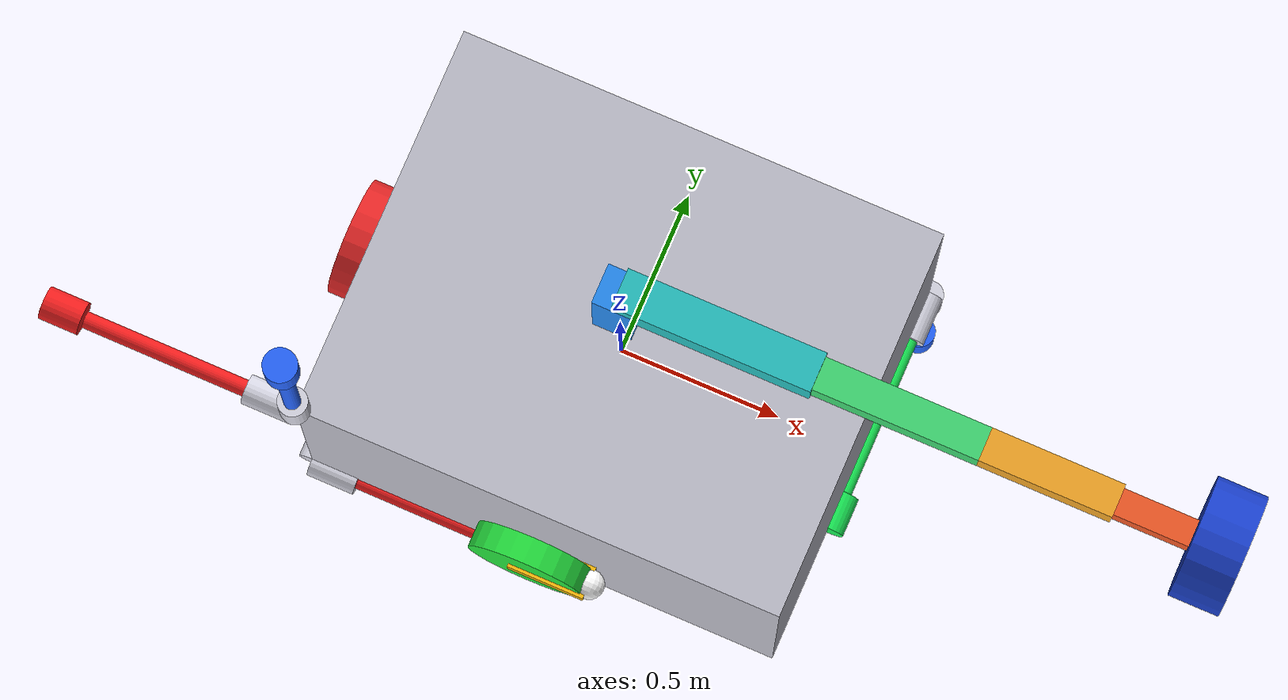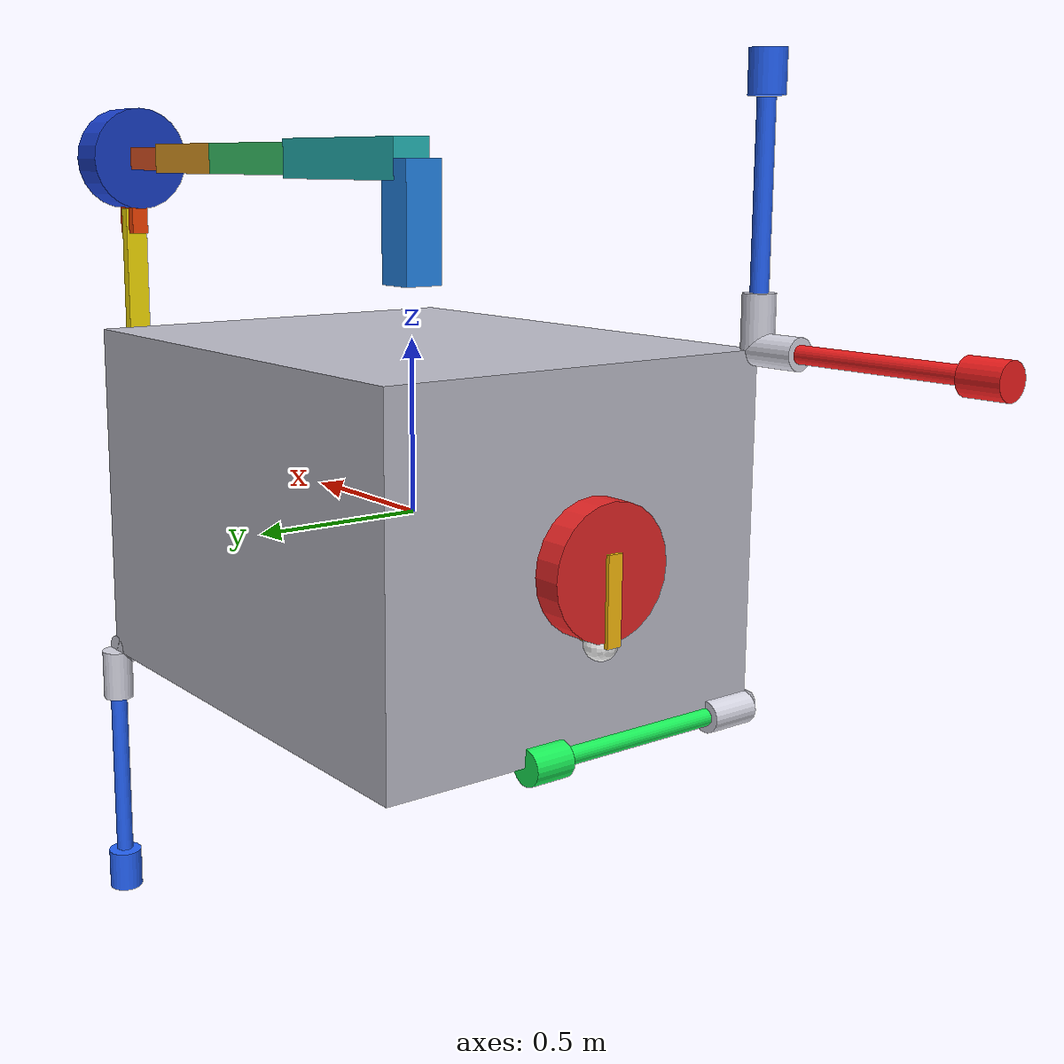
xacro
<?xml version="1.0"?>
<robot name="spacecraft_arm" xmlns:xacro="http://www.ros.org/wiki/xacro">
  <xacro:arg name="controllers_file" default="$(find spacecraft_reaction_sim)/config/arm_controllers.yaml"/>
  <xacro:macro name="box_x_link" params="name mass length width height rgba">
    <link name="${name}">
      <inertial>
        <origin xyz="${length / 2.0} 0 0" rpy="0 0 0"/>
        <mass value="${mass}"/>
        <inertia ixx="${mass / 12.0 * (width * width + height * height)}"
                 ixy="0" ixz="0"
                 iyy="${mass / 12.0 * (length * length + height * height)}"
                 iyz="0"
                 izz="${mass / 12.0 * (length * length + width * width)}"/>
      </inertial>
      <visual>
        <origin xyz="${length / 2.0} 0 0" rpy="0 0 0"/>
        <geometry><box size="${length} ${width} ${height}"/></geometry>
        <material name="${name}_color"><color rgba="${rgba}"/></material>
      </visual>
      <collision>
        <origin xyz="${length / 2.0} 0 0" rpy="0 0 0"/>
        <geometry><box size="${length} ${width} ${height}"/></geometry>
      </collision>
    </link>
  </xacro:macro>

  <xacro:macro name="box_z_link" params="name mass length width height rgba">
    <link name="${name}">
      <inertial>
        <origin xyz="0 0 ${length / 2.0}" rpy="0 0 0"/>
        <mass value="${mass}"/>
        <inertia ixx="${mass / 12.0 * (width * width + length * length)}"
                 ixy="0" ixz="0"
                 iyy="${mass / 12.0 * (height * height + length * length)}"
                 iyz="0"
                 izz="${mass / 12.0 * (width * width + height * height)}"/>
      </inertial>
      <visual>
        <origin xyz="0 0 ${length / 2.0}" rpy="0 0 0"/>
        <geometry><box size="${width} ${height} ${length}"/></geometry>
        <material name="${name}_color"><color rgba="${rgba}"/></material>
      </visual>
      <collision>
        <origin xyz="0 0 ${length / 2.0}" rpy="0 0 0"/>
        <geometry><box size="${width} ${height} ${length}"/></geometry>
      </collision>
    </link>
  </xacro:macro>

  <xacro:macro name="reaction_wheel" params="name rgba">
    <link name="${name}">
      <inertial><mass value="4.0"/><inertia ixx="0.034533" ixy="0" ixz="0" iyy="0.034533" iyz="0" izz="0.064"/></inertial>
      <visual><geometry><cylinder radius="0.18" length="0.08"/></geometry><material name="${name}_color"><color rgba="${rgba}"/></material></visual>
      <!-- Visual-only radial pointer: it makes wheel rotation unambiguous in Gazebo. -->
      <visual><origin xyz="0.07 0 0" rpy="0 0 0"/><geometry><box size="0.24 0.045 0.10"/></geometry><material name="${name}_marker"><color rgba="1 0.75 0.05 1"/></material></visual>
      <visual><origin xyz="0.19 0 0" rpy="0 0 0"/><geometry><sphere radius="0.045"/></geometry><material name="${name}_marker_tip"><color rgba="1 1 1 1"/></material></visual>
      <collision><geometry><cylinder radius="0.18" length="0.08"/></geometry></collision>
    </link>
  </xacro:macro>

  <link name="spacecraft_base">
    <inertial>
      <mass value="400.0"/>
      <inertia ixx="81.333333" ixy="0" ixz="0" iyy="108.333333" iyz="0" izz="123.0"/>
    </inertial>
    <visual>
      <geometry><box size="1.5 1.2 1.0"/></geometry>
      <material name="base_white"><color rgba="0.75 0.75 0.8 1"/></material>
    </visual>
    <collision><geometry><box size="1.5 1.2 1.0"/></geometry></collision>
  </link>

  <!-- Each RCS link points along its local +Z thrust axis; mount rotations set its body-frame direction. -->
  <xacro:macro name="rcs_thruster" params="name rgba">
    <inertial><mass value="0.05"/><inertia ixx="0.0001" ixy="0" ixz="0" iyy="0.0001" iyz="0" izz="0.0001"/></inertial>
    <visual><origin xyz="0 0 0.075" rpy="0 0 0"/><geometry><cylinder radius="0.045" length="0.15"/></geometry><material name="rcs_nozzle"><color rgba="0.85 0.85 0.9 1"/></material></visual>
    <!-- Long visual-only thrust arrow along local +Z; it does not alter inertia or collisions. -->
    <visual><origin xyz="0 0 0.38" rpy="0 0 0"/><geometry><cylinder radius="0.025" length="0.55"/></geometry><material name="${name}_thrust_arrow"><color rgba="${rgba}"/></material></visual>
    <visual><origin xyz="0 0 0.72" rpy="0 0 0"/><geometry><cylinder radius="0.050" length="0.12"/></geometry><material name="${name}_thrust_tip"><color rgba="${rgba}"/></material></visual>
  </xacro:macro>
  <link name="rcs_corner_a_x_positive_thruster"><xacro:rcs_thruster name="rcs_corner_a_x_positive_thruster" rgba="0.95 0.12 0.12 1"/></link>
  <link name="rcs_corner_a_y_positive_thruster"><xacro:rcs_thruster name="rcs_corner_a_y_positive_thruster" rgba="0.10 0.95 0.35 1"/></link>
  <link name="rcs_corner_b_x_negative_thruster"><xacro:rcs_thruster name="rcs_corner_b_x_negative_thruster" rgba="0.95 0.12 0.12 1"/></link>
  <link name="rcs_corner_b_z_positive_thruster"><xacro:rcs_thruster name="rcs_corner_b_z_positive_thruster" rgba="0.15 0.40 1.00 1"/></link>
  <link name="rcs_corner_c_y_negative_thruster"><xacro:rcs_thruster name="rcs_corner_c_y_negative_thruster" rgba="0.10 0.95 0.35 1"/></link>
  <link name="rcs_corner_c_z_negative_thruster"><xacro:rcs_thruster name="rcs_corner_c_z_negative_thruster" rgba="0.15 0.40 1.00 1"/></link>

  <xacro:box_z_link name="arm_link_1" mass="8.0" length="0.35" width="0.12" height="0.12" rgba="0.15 0.55 0.95 1"/>
  <xacro:box_x_link name="arm_link_2" mass="7.0" length="0.60" width="0.12" height="0.12" rgba="0.15 0.75 0.75 1"/>
  <xacro:box_x_link name="arm_link_3" mass="6.0" length="0.50" width="0.10" height="0.10" rgba="0.25 0.85 0.45 1"/>
  <xacro:box_x_link name="arm_link_4" mass="5.0" length="0.40" width="0.10" height="0.10" rgba="0.95 0.65 0.15 1"/>
  <xacro:box_x_link name="arm_link_5" mass="4.0" length="0.30" width="0.08" height="0.08" rgba="0.95 0.35 0.15 1"/>
  <xacro:reaction_wheel name="reaction_wheel_x" rgba="0.9 0.15 0.15 1"/>
  <xacro:reaction_wheel name="reaction_wheel_y" rgba="0.15 0.9 0.25 1"/>
  <xacro:reaction_wheel name="reaction_wheel_z" rgba="0.2 0.35 0.95 1"/>

  <link name="arm_wrist">
    <inertial>
      <mass value="12.0"/>
      <inertia ixx="0.20" ixy="0" ixz="0" iyy="0.20" iyz="0" izz="0.389"/>
    </inertial>
    <visual>
      <geometry><cylinder radius="0.18" length="0.15"/></geometry>
      <material name="wrist_blue"><color rgba="0.1 0.25 0.8 1"/></material>
    </visual>
    <visual>
      <origin xyz="0.19 0 0" rpy="0 0 0"/>
      <geometry><box size="0.16 0.06 0.10"/></geometry>
      <material name="wrist_marker_orange"><color rgba="1 0.28 0.02 1"/></material>
    </visual>
    <!-- Visual-only radial flag: it deliberately amplifies joint-6 roll motion. -->
    <visual>
      <origin xyz="0.43 0 0" rpy="0 0 0"/>
      <geometry><box size="0.50 0.08 0.035"/></geometry>
      <material name="wrist_roll_flag"><color rgba="1 0.9 0.02 1"/></material>
    </visual>
    <visual>
      <origin xyz="0.70 0 0" rpy="0 0 0"/>
      <geometry><sphere radius="0.06"/></geometry>
      <material name="wrist_roll_tip"><color rgba="1 0.05 0.05 1"/></material>
    </visual>
    <collision><geometry><cylinder radius="0.18" length="0.15"/></geometry></collision>
  </link>

  <joint name="arm_joint_1" type="revolute"><parent link="spacecraft_base"/><child link="arm_link_1"/><origin xyz="0 0 0.65" rpy="0 0 0"/><axis xyz="0 0 1"/><dynamics damping="0" friction="0"/><limit lower="-2.967" upper="2.967" effort="30" velocity="3"/></joint>
  <joint name="arm_joint_2" type="revolute"><parent link="arm_link_1"/><child link="arm_link_2"/><origin xyz="0 0 0.35" rpy="0 0 0"/><axis xyz="0 1 0"/><dynamics damping="0" friction="0"/><limit lower="-1.745" upper="1.745" effort="30" velocity="3"/></joint>
  <joint name="arm_joint_3" type="revolute"><parent link="arm_link_2"/><child link="arm_link_3"/><origin xyz="0.60 0 0" rpy="0 0 0"/><axis xyz="0 1 0"/><dynamics damping="0" friction="0"/><limit lower="-2.268" upper="2.268" effort="25" velocity="3"/></joint>
  <joint name="arm_joint_4" type="revolute"><parent link="arm_link_3"/><child link="arm_link_4"/><origin xyz="0.50 0 0" rpy="0 0 0"/><axis xyz="1 0 0"/><dynamics damping="0" friction="0"/><limit lower="-3.142" upper="3.142" effort="20" velocity="4"/></joint>
  <joint name="arm_joint_5" type="revolute"><parent link="arm_link_4"/><child link="arm_link_5"/><origin xyz="0.40 0 0" rpy="0 0 0"/><axis xyz="0 1 0"/><dynamics damping="0" friction="0"/><limit lower="-2.094" upper="2.094" effort="15" velocity="4"/></joint>
  <!-- Joint 6 rolls about the final arm direction (body x), perpendicular to joint 5 (body y). -->
  <joint name="arm_joint_6" type="revolute"><parent link="arm_link_5"/><child link="arm_wrist"/><origin xyz="0.30 0 0" rpy="0 1.570796 0"/><axis xyz="0 0 1"/><dynamics damping="0" friction="0"/><limit lower="-3.142" upper="3.142" effort="10" velocity="4"/></joint>
  <!-- Three-corner RCS layout. Local +Z is each nozzle thrust direction. -->
  <!-- Corner A (-X,-Y,-Z): actuator 0 = +X, actuator 1 = +Y. -->
  <joint name="rcs_corner_a_x_positive_mount" type="fixed"><parent link="spacecraft_base"/><child link="rcs_corner_a_x_positive_thruster"/><origin xyz="-0.75 -0.60 -0.50" rpy="0 1.570796 0"/></joint>
  <joint name="rcs_corner_a_y_positive_mount" type="fixed"><parent link="spacecraft_base"/><child link="rcs_corner_a_y_positive_thruster"/><origin xyz="-0.75 -0.60 -0.50" rpy="-1.570796 0 0"/></joint>
  <!-- Corner B (-X,-Y,+Z): actuator 2 = -X, actuator 3 = +Z. -->
  <joint name="rcs_corner_b_x_negative_mount" type="fixed"><parent link="spacecraft_base"/><child link="rcs_corner_b_x_negative_thruster"/><origin xyz="-0.75 -0.60 0.50" rpy="0 -1.570796 0"/></joint>
  <joint name="rcs_corner_b_z_positive_mount" type="fixed"><parent link="spacecraft_base"/><child link="rcs_corner_b_z_positive_thruster"/><origin xyz="-0.75 -0.60 0.50" rpy="0 0 0"/></joint>
  <!-- Corner C (+X,+Y,-Z): actuator 4 = -Y, actuator 5 = -Z. -->
  <joint name="rcs_corner_c_y_negative_mount" type="fixed"><parent link="spacecraft_base"/><child link="rcs_corner_c_y_negative_thruster"/><origin xyz="0.75 0.60 -0.50" rpy="1.570796 0 0"/></joint>
  <joint name="rcs_corner_c_z_negative_mount" type="fixed"><parent link="spacecraft_base"/><child link="rcs_corner_c_z_negative_thruster"/><origin xyz="0.75 0.60 -0.50" rpy="3.141593 0 0"/></joint>
  <joint name="wheel_joint_x" type="continuous"><parent link="spacecraft_base"/><child link="reaction_wheel_x"/><origin xyz="-0.82 0 0" rpy="0 1.570796 0"/><axis xyz="0 0 1"/><dynamics damping="0" friction="0"/><limit effort="2" velocity="523.599"/></joint>
  <joint name="wheel_joint_y" type="continuous"><parent link="spacecraft_base"/><child link="reaction_wheel_y"/><origin xyz="0 -0.67 0" rpy="-1.570796 0 0"/><axis xyz="0 0 1"/><dynamics damping="0" friction="0"/><limit effort="2" velocity="523.599"/></joint>
  <joint name="wheel_joint_z" type="continuous"><parent link="spacecraft_base"/><child link="reaction_wheel_z"/><origin xyz="0 0 -0.57" rpy="0 0 0"/><axis xyz="0 0 1"/><dynamics damping="0" friction="0"/><limit effort="2" velocity="523.599"/></joint>

  <ros2_control name="GazeboSimSystem" type="system">
    <hardware><plugin>gz_ros2_control/GazeboSimSystem</plugin></hardware>
    <xacro:macro name="effort_joint" params="name limit">
      <joint name="${name}">
        <command_interface name="effort"><param name="min">-${limit}</param><param name="max">${limit}</param></command_interface>
        <state_interface name="position"/><state_interface name="velocity"/><state_interface name="effort"/>
      </joint>
    </xacro:macro>
    <xacro:effort_joint name="arm_joint_1" limit="30"/>
    <xacro:effort_joint name="arm_joint_2" limit="30"/>
    <xacro:effort_joint name="arm_joint_3" limit="25"/>
    <xacro:effort_joint name="arm_joint_4" limit="20"/>
    <xacro:effort_joint name="arm_joint_5" limit="15"/>
    <xacro:effort_joint name="arm_joint_6" limit="10"/>
    <xacro:effort_joint name="wheel_joint_x" limit="2"/>
    <xacro:effort_joint name="wheel_joint_y" limit="2"/>
    <xacro:effort_joint name="wheel_joint_z" limit="2"/>
  </ros2_control>

  <gazebo reference="rcs_corner_a_x_positive_mount"><preserveFixedJoint>true</preserveFixedJoint></gazebo>
  <gazebo reference="rcs_corner_a_y_positive_mount"><preserveFixedJoint>true</preserveFixedJoint></gazebo>
  <gazebo reference="rcs_corner_b_x_negative_mount"><preserveFixedJoint>true</preserveFixedJoint></gazebo>
  <gazebo reference="rcs_corner_b_z_positive_mount"><preserveFixedJoint>true</preserveFixedJoint></gazebo>
  <gazebo reference="rcs_corner_c_y_negative_mount"><preserveFixedJoint>true</preserveFixedJoint></gazebo>
  <gazebo reference="rcs_corner_c_z_negative_mount"><preserveFixedJoint>true</preserveFixedJoint></gazebo>

  <gazebo>
    <plugin filename="gz-sim-odometry-publisher-system" name="gz::sim::systems::OdometryPublisher"><dimensions>3</dimensions><odom_publish_frequency>250</odom_publish_frequency></plugin>
    <plugin filename="gz-sim-spacecraft-thruster-model-system" name="gz::sim::systems::SpacecraftThrusterModel"><link_name>rcs_corner_a_x_positive_thruster</link_name><actuator_number>0</actuator_number><duty_cycle_frequency>20</duty_cycle_frequency><max_thrust>1.0</max_thrust><sub_topic>command/duty_cycle</sub_topic></plugin>
    <plugin filename="gz-sim-spacecraft-thruster-model-system" name="gz::sim::systems::SpacecraftThrusterModel"><link_name>rcs_corner_a_y_positive_thruster</link_name><actuator_number>1</actuator_number><duty_cycle_frequency>20</duty_cycle_frequency><max_thrust>1.0</max_thrust><sub_topic>command/duty_cycle</sub_topic></plugin>
    <plugin filename="gz-sim-spacecraft-thruster-model-system" name="gz::sim::systems::SpacecraftThrusterModel"><link_name>rcs_corner_b_x_negative_thruster</link_name><actuator_number>2</actuator_number><duty_cycle_frequency>20</duty_cycle_frequency><max_thrust>1.0</max_thrust><sub_topic>command/duty_cycle</sub_topic></plugin>
    <plugin filename="gz-sim-spacecraft-thruster-model-system" name="gz::sim::systems::SpacecraftThrusterModel"><link_name>rcs_corner_b_z_positive_thruster</link_name><actuator_number>3</actuator_number><duty_cycle_frequency>20</duty_cycle_frequency><max_thrust>1.0</max_thrust><sub_topic>command/duty_cycle</sub_topic></plugin>
    <plugin filename="gz-sim-spacecraft-thruster-model-system" name="gz::sim::systems::SpacecraftThrusterModel"><link_name>rcs_corner_c_y_negative_thruster</link_name><actuator_number>4</actuator_number><duty_cycle_frequency>20</duty_cycle_frequency><max_thrust>1.0</max_thrust><sub_topic>command/duty_cycle</sub_topic></plugin>
    <plugin filename="gz-sim-spacecraft-thruster-model-system" name="gz::sim::systems::SpacecraftThrusterModel"><link_name>rcs_corner_c_z_negative_thruster</link_name><actuator_number>5</actuator_number><duty_cycle_frequency>20</duty_cycle_frequency><max_thrust>1.0</max_thrust><sub_topic>command/duty_cycle</sub_topic></plugin>
    <plugin filename="libgz_ros2_control-system.so" name="gz_ros2_control::GazeboSimROS2ControlPlugin"><parameters>$(arg controllers_file)</parameters><hold_joints>false</hold_joints></plugin>
  </gazebo>
</robot>
